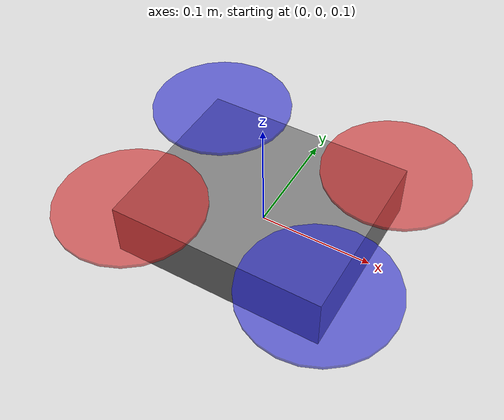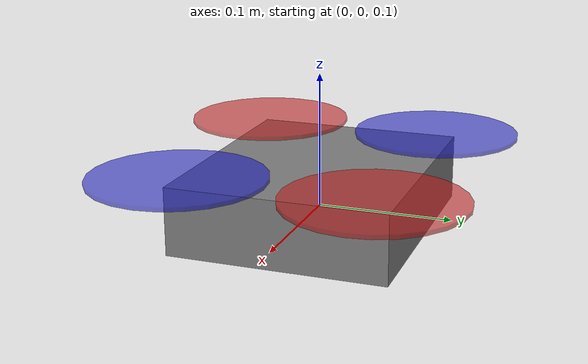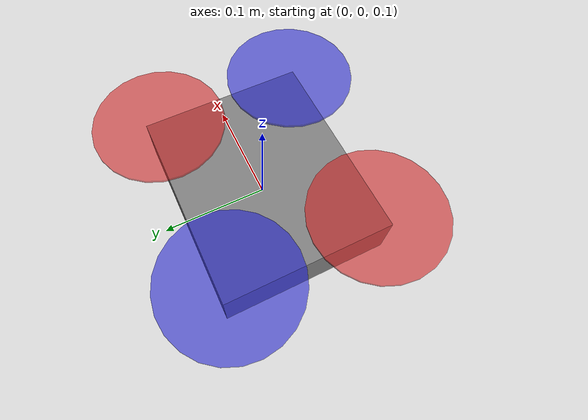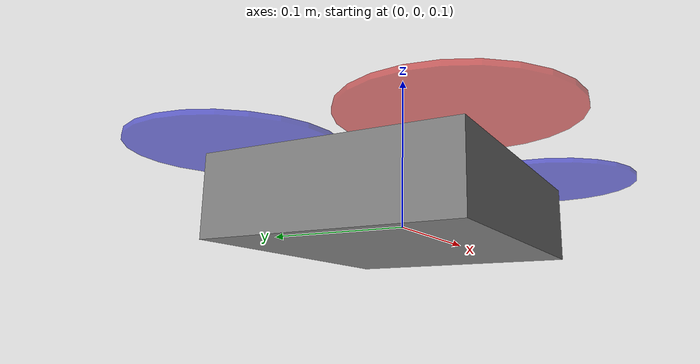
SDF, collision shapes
<?xml version="1.0" encoding="UTF-8"?>
<sdf version='1.9'>
  <model name='zephyros'>
    <!-- Spawn slightly above ground -->
    <pose>0 0 0.1 0 0 0</pose>
    <self_collide>false</self_collide>
    <static>false</static>

    <!-- Base link: body + sensors                                           -->
    <!-- Total drone mass: 969 g. Props: 4x3.47 g = 13.9 g.                 -->
    <!-- base_link mass = 969 - 13.9 = 955.1 g                              -->
    <!-- Inertia: URDF frame-only values scaled by 955.1/441.8 = 2.162       -->
    <link name="base_link">
      <inertial>
        <!-- CoM offset from link origin -->
        <pose>0.009239 0.003172 0.024879 0 0 0</pose>
        <mass>0.9551</mass>
        <inertia>
          <ixx>0.002207</ixx>
          <ixy>6.5e-06</ixy>
          <ixz>-0.000225</ixz>
          <iyy>0.003338</iyy>
          <iyz>-2.2e-05</iyz>
          <izz>0.002977</izz>
        </inertia>
      </inertial>
      <gravity>true</gravity>
      <velocity_decay />

      <!-- Body mesh (STL from SolidWorks, scale mm→m) -->
      <visual name="base_link_visual">
        <pose>0 0 0 0 0 0</pose>
        <geometry>
          <mesh>
            <uri>model://zephyros/drone_assembly_description/meshes/base_link.stl</uri>
            <scale>0.001 0.001 0.001</scale>
          </mesh>
        </geometry>
        <material>
          <ambient>0.3 0.3 0.3 1</ambient>
          <diffuse>0.5 0.5 0.5 1</diffuse>
          <specular>0.1 0.1 0.1 1</specular>
        </material>
      </visual>

      <!-- Simple box collision -->
      <collision name="base_link_collision">
        <pose>0 0 0.01 0 0 0</pose>
        <geometry>
          <box>
            <size>0.19 0.16 0.05</size>
          </box>
        </geometry>
        <surface>
          <contact>
            <ode>
              <min_depth>0.001</min_depth>
              <max_vel>0</max_vel>
            </ode>
          </contact>
          <friction><ode /></friction>
        </surface>
      </collision>

      <!-- Sensors (copied from x500_base) -->
      <sensor name="air_pressure_sensor" type="air_pressure">
        <gz_frame_id>base_link</gz_frame_id>
        <always_on>1</always_on>
        <update_rate>50</update_rate>
        <air_pressure>
          <pressure>
            <noise type="gaussian">
              <mean>0</mean>
              <stddev>3</stddev>
            </noise>
          </pressure>
        </air_pressure>
      </sensor>

      <sensor name="magnetometer_sensor" type="magnetometer">
        <gz_frame_id>base_link</gz_frame_id>
        <always_on>1</always_on>
        <update_rate>100</update_rate>
        <magnetometer>
          <x><noise type="gaussian"><stddev>0.0001</stddev></noise></x>
          <y><noise type="gaussian"><stddev>0.0001</stddev></noise></y>
          <z><noise type="gaussian"><stddev>0.0001</stddev></noise></z>
        </magnetometer>
      </sensor>

      <sensor name="imu_sensor" type="imu">
        <gz_frame_id>base_link</gz_frame_id>
        <always_on>1</always_on>
        <update_rate>250</update_rate>
        <imu>
          <angular_velocity>
            <x><noise type="gaussian"><mean>0.0</mean><stddev>0.0008726646</stddev></noise></x>
            <y><noise type="gaussian"><mean>0.0</mean><stddev>0.0008726646</stddev></noise></y>
            <z><noise type="gaussian"><mean>0.0</mean><stddev>0.0008726646</stddev></noise></z>
          </angular_velocity>
          <linear_acceleration>
            <x><noise type="gaussian"><mean>0.0</mean><stddev>0.00637</stddev></noise></x>
            <y><noise type="gaussian"><mean>0.0</mean><stddev>0.00637</stddev></noise></y>
            <z><noise type="gaussian"><mean>0.0</mean><stddev>0.00686</stddev></noise></z>
          </linear_acceleration>
        </imu>
      </sensor>

      <sensor name="navsat_sensor" type="navsat">
        <gz_frame_id>base_link</gz_frame_id>
        <always_on>1</always_on>
        <update_rate>30</update_rate>
      </sensor>
    </link>

    <!-- rotor_0: Front-Right, CCW                                          -->
    <!-- URDF joint "Revolute 16" (FR): (0.088431, 0.072039, 0.040514)      -->
    <!-- Gazebo ENU (y-left): x=+0.0884, y=-0.0720                          -->
    <link name="rotor_0">
      <gravity>true</gravity>
      <self_collide>false</self_collide>
      <velocity_decay />
      <pose>0.088431 -0.072039 0.040514 0 0 0</pose>
      <inertial>
        <mass>0.0034727520528517086</mass>
        <inertia>
          <ixx>1e-06</ixx><ixy>0</ixy><ixz>0</ixz>
          <iyy>1e-06</iyy><iyz>0</iyz>
          <izz>2e-06</izz>
        </inertia>
      </inertial>
      <visual name="rotor_0_visual">
        <!-- Cylinder approximating a 5-inch prop disk -->
        <pose>0 0 0.003 0 0 0</pose>
        <geometry>
          <cylinder><radius>0.0635</radius><length>0.003</length></cylinder>
        </geometry>
        <material>
          <ambient>0.1 0.1 0.8 0.6</ambient>
          <diffuse>0.1 0.1 0.8 0.6</diffuse>
        </material>
      </visual>
      <collision name="rotor_0_collision">
        <pose>0 0 0 0 0 0</pose>
        <geometry>
          <cylinder><radius>0.0635</radius><length>0.003</length></cylinder>
        </geometry>
        <surface>
          <contact><ode><min_depth>0.001</min_depth><max_vel>0</max_vel></ode></contact>
          <friction><ode /></friction>
        </surface>
      </collision>
    </link>

    <joint name="rotor_0_joint" type="revolute">
      <parent>base_link</parent>
      <child>rotor_0</child>
      <axis>
        <xyz>0 0 1</xyz>
        <limit><lower>-1e+16</lower><upper>1e+16</upper></limit>
        <dynamics><spring_reference>0</spring_reference><spring_stiffness>0</spring_stiffness></dynamics>
      </axis>
    </joint>

    <!-- rotor_1: Back-Left, CCW                                            -->
    <!-- URDF joint "Revolute 17" (BL): (-0.082176, -0.068017, 0.040514)    -->
    <!-- Gazebo ENU (y-left): x=-0.0822, y=+0.0680                          -->
    <link name="rotor_1">
      <gravity>true</gravity>
      <self_collide>false</self_collide>
      <velocity_decay />
      <pose>-0.082176 0.068017 0.040514 0 0 0</pose>
      <inertial>
        <mass>0.0034727520528517086</mass>
        <inertia>
          <ixx>1e-06</ixx><ixy>0</ixy><ixz>0</ixz>
          <iyy>1e-06</iyy><iyz>0</iyz>
          <izz>2e-06</izz>
        </inertia>
      </inertial>
      <visual name="rotor_1_visual">
        <pose>0 0 0.003 0 0 0</pose>
        <geometry>
          <cylinder><radius>0.0635</radius><length>0.003</length></cylinder>
        </geometry>
        <material>
          <ambient>0.1 0.1 0.8 0.6</ambient>
          <diffuse>0.1 0.1 0.8 0.6</diffuse>
        </material>
      </visual>
      <collision name="rotor_1_collision">
        <pose>0 0 0 0 0 0</pose>
        <geometry>
          <cylinder><radius>0.0635</radius><length>0.003</length></cylinder>
        </geometry>
        <surface>
          <contact><ode><min_depth>0.001</min_depth><max_vel>0</max_vel></ode></contact>
          <friction><ode /></friction>
        </surface>
      </collision>
    </link>

    <joint name="rotor_1_joint" type="revolute">
      <parent>base_link</parent>
      <child>rotor_1</child>
      <axis>
        <xyz>0 0 1</xyz>
        <limit><lower>-1e+16</lower><upper>1e+16</upper></limit>
        <dynamics><spring_reference>0</spring_reference><spring_stiffness>0</spring_stiffness></dynamics>
      </axis>
    </joint>

    <!-- rotor_2: Front-Left, CW                                            -->
    <!-- URDF joint "Revolute 15" (FL): (0.088628, -0.068017, 0.040514)     -->
    <!-- Gazebo ENU (y-left): x=+0.0886, y=+0.0680                          -->
    <link name="rotor_2">
      <gravity>true</gravity>
      <self_collide>false</self_collide>
      <velocity_decay />
      <pose>0.088628 0.068017 0.040514 0 0 0</pose>
      <inertial>
        <mass>0.0034727457217575432</mass>
        <inertia>
          <ixx>1e-06</ixx><ixy>0</ixy><ixz>0</ixz>
          <iyy>1e-06</iyy><iyz>0</iyz>
          <izz>2e-06</izz>
        </inertia>
      </inertial>
      <visual name="rotor_2_visual">
        <pose>0 0 0.003 0 0 0</pose>
        <geometry>
          <cylinder><radius>0.0635</radius><length>0.003</length></cylinder>
        </geometry>
        <material>
          <ambient>0.8 0.1 0.1 0.6</ambient>
          <diffuse>0.8 0.1 0.1 0.6</diffuse>
        </material>
      </visual>
      <collision name="rotor_2_collision">
        <pose>0 0 0 0 0 0</pose>
        <geometry>
          <cylinder><radius>0.0635</radius><length>0.003</length></cylinder>
        </geometry>
        <surface>
          <contact><ode><min_depth>0.001</min_depth><max_vel>0</max_vel></ode></contact>
          <friction><ode /></friction>
        </surface>
      </collision>
    </link>

    <joint name="rotor_2_joint" type="revolute">
      <parent>base_link</parent>
      <child>rotor_2</child>
      <axis>
        <xyz>0 0 1</xyz>
        <limit><lower>-1e+16</lower><upper>1e+16</upper></limit>
        <dynamics><spring_reference>0</spring_reference><spring_stiffness>0</spring_stiffness></dynamics>
      </axis>
    </joint>

    <!-- rotor_3: Back-Right, CW                                            -->
    <!-- URDF joint "Revolute 18" (BR): (-0.081841, 0.071798, 0.040514)     -->
    <!-- Gazebo ENU (y-left): x=-0.0818, y=-0.0718                          -->
    <link name="rotor_3">
      <gravity>true</gravity>
      <self_collide>false</self_collide>
      <velocity_decay />
      <pose>-0.081841 -0.071798 0.040514 0 0 0</pose>
      <inertial>
        <mass>0.0034727457075369107</mass>
        <inertia>
          <ixx>1e-06</ixx><ixy>0</ixy><ixz>0</ixz>
          <iyy>1e-06</iyy><iyz>0</iyz>
          <izz>2e-06</izz>
        </inertia>
      </inertial>
      <visual name="rotor_3_visual">
        <pose>0 0 0.003 0 0 0</pose>
        <geometry>
          <cylinder><radius>0.0635</radius><length>0.003</length></cylinder>
        </geometry>
        <material>
          <ambient>0.8 0.1 0.1 0.6</ambient>
          <diffuse>0.8 0.1 0.1 0.6</diffuse>
        </material>
      </visual>
      <collision name="rotor_3_collision">
        <pose>0 0 0 0 0 0</pose>
        <geometry>
          <cylinder><radius>0.0635</radius><length>0.003</length></cylinder>
        </geometry>
        <surface>
          <contact><ode><min_depth>0.001</min_depth><max_vel>0</max_vel></ode></contact>
          <friction><ode /></friction>
        </surface>
      </collision>
    </link>

    <joint name="rotor_3_joint" type="revolute">
      <parent>base_link</parent>
      <child>rotor_3</child>
      <axis>
        <xyz>0 0 1</xyz>
        <limit><lower>-1e+16</lower><upper>1e+16</upper></limit>
        <dynamics><spring_reference>0</spring_reference><spring_stiffness>0</spring_stiffness></dynamics>
      </axis>
    </joint>

    <!-- Motor plugins                                                       -->
    <!-- Real specs: total mass 969 g, max total thrust 30.8 N              -->
    <!--   max thrust/motor = 7.7 N, T/W = 30.8 / (0.969*9.81) = 3.24      -->
    <!--   motorConstant = 7.7 / 1500^2 = 3.422e-6                          -->
    <!--   hover ω ≈ 835 rad/s → MPC_THR_HOVER ≈ 0.53                       -->

    <!-- rotor_0: Front-Right, CCW -->
    <plugin filename="gz-sim-multicopter-motor-model-system"
      name="gz::sim::systems::MulticopterMotorModel">
      <jointName>rotor_0_joint</jointName>
      <linkName>rotor_0</linkName>
      <turningDirection>ccw</turningDirection>
      <timeConstantUp>0.0125</timeConstantUp>
      <timeConstantDown>0.025</timeConstantDown>
      <maxRotVelocity>1500</maxRotVelocity>
      <motorConstant>3.422e-06</motorConstant>
      <momentConstant>0.016</momentConstant>
      <commandSubTopic>command/motor_speed</commandSubTopic>
      <motorNumber>0</motorNumber>
      <rotorDragCoefficient>8.06428e-05</rotorDragCoefficient>
      <rollingMomentCoefficient>1e-06</rollingMomentCoefficient>
      <rotorVelocitySlowdownSim>10</rotorVelocitySlowdownSim>
      <motorType>velocity</motorType>
    </plugin>

    <!-- rotor_1: Back-Left, CCW -->
    <plugin filename="gz-sim-multicopter-motor-model-system"
      name="gz::sim::systems::MulticopterMotorModel">
      <jointName>rotor_1_joint</jointName>
      <linkName>rotor_1</linkName>
      <turningDirection>ccw</turningDirection>
      <timeConstantUp>0.0125</timeConstantUp>
      <timeConstantDown>0.025</timeConstantDown>
      <maxRotVelocity>1500</maxRotVelocity>
      <motorConstant>3.422e-06</motorConstant>
      <momentConstant>0.016</momentConstant>
      <commandSubTopic>command/motor_speed</commandSubTopic>
      <motorNumber>1</motorNumber>
      <rotorDragCoefficient>8.06428e-05</rotorDragCoefficient>
      <rollingMomentCoefficient>1e-06</rollingMomentCoefficient>
      <rotorVelocitySlowdownSim>10</rotorVelocitySlowdownSim>
      <motorType>velocity</motorType>
    </plugin>

    <!-- rotor_2: Front-Left, CW -->
    <plugin filename="gz-sim-multicopter-motor-model-system"
      name="gz::sim::systems::MulticopterMotorModel">
      <jointName>rotor_2_joint</jointName>
      <linkName>rotor_2</linkName>
      <turningDirection>cw</turningDirection>
      <timeConstantUp>0.0125</timeConstantUp>
      <timeConstantDown>0.025</timeConstantDown>
      <maxRotVelocity>1500</maxRotVelocity>
      <motorConstant>3.422e-06</motorConstant>
      <momentConstant>0.016</momentConstant>
      <commandSubTopic>command/motor_speed</commandSubTopic>
      <motorNumber>2</motorNumber>
      <rotorDragCoefficient>8.06428e-05</rotorDragCoefficient>
      <rollingMomentCoefficient>1e-06</rollingMomentCoefficient>
      <rotorVelocitySlowdownSim>10</rotorVelocitySlowdownSim>
      <motorType>velocity</motorType>
    </plugin>

    <!-- rotor_3: Back-Right, CW -->
    <plugin filename="gz-sim-multicopter-motor-model-system"
      name="gz::sim::systems::MulticopterMotorModel">
      <jointName>rotor_3_joint</jointName>
      <linkName>rotor_3</linkName>
      <turningDirection>cw</turningDirection>
      <timeConstantUp>0.0125</timeConstantUp>
      <timeConstantDown>0.025</timeConstantDown>
      <maxRotVelocity>1500</maxRotVelocity>
      <motorConstant>3.422e-06</motorConstant>
      <momentConstant>0.016</momentConstant>
      <commandSubTopic>command/motor_speed</commandSubTopic>
      <motorNumber>3</motorNumber>
      <rotorDragCoefficient>8.06428e-05</rotorDragCoefficient>
      <rollingMomentCoefficient>1e-06</rollingMomentCoefficient>
      <rotorVelocitySlowdownSim>10</rotorVelocitySlowdownSim>
      <motorType>velocity</motorType>
    </plugin>

  </model>
</sdf>
